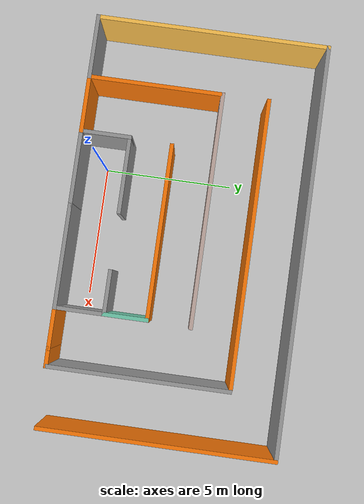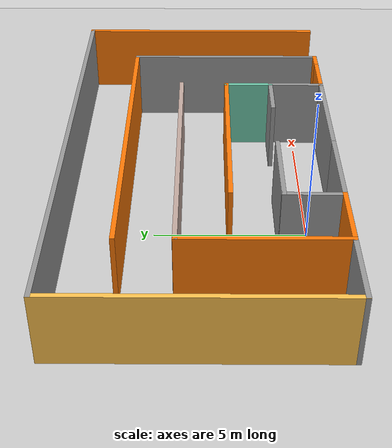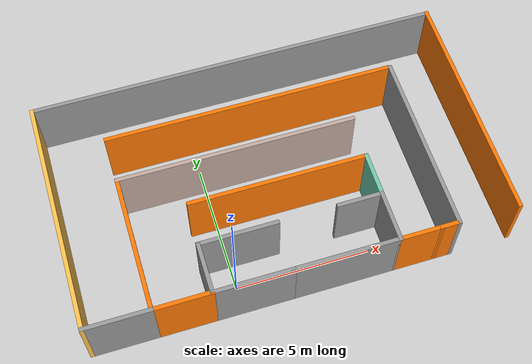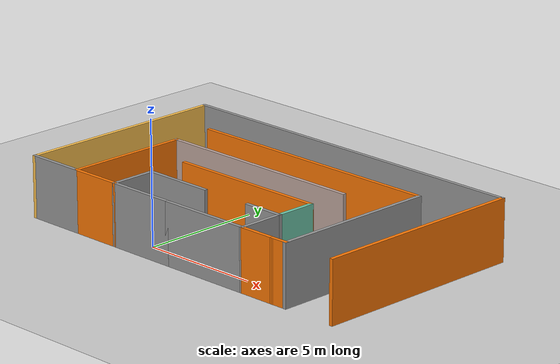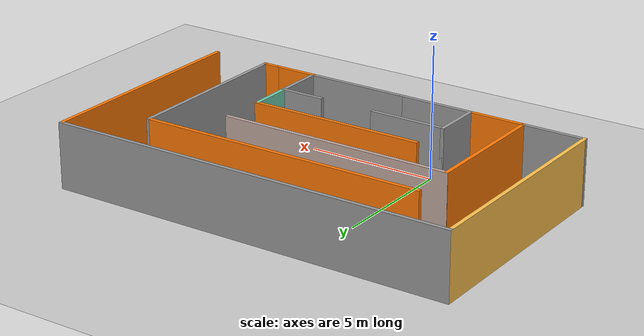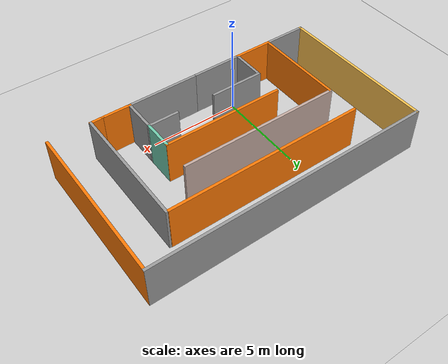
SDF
<sdf version="1.7">
 <world name="default">
  <light name="sun" type="directional">
   <pose>0 0 10 0 -0 0</pose>
   <diffuse>0.8 0.8 0.8 1</diffuse>
   <specular>0.2 0.2 0.2 1</specular>
   <attenuation>
    <range>1000</range>
    <constant>0.9</constant>
    <linear>0.01</linear>
    <quadratic>0.001</quadratic>
   </attenuation>
   <direction>-0.5 0.1 -0.9</direction>
   <spot><inner_angle>0</inner_angle><outer_angle>0</outer_angle><falloff>0</falloff></spot>
  </light>
  <model name="ground_plane">
   <static>1</static>
   <link name="link">
    <collision name="collision">
     <geometry><plane><normal>0 0 1</normal><size>100 100</size></plane></geometry>
     <surface>
      <contact><collide_bitmask>65535</collide_bitmask></contact>
      <friction><ode><mu>100</mu><mu2>50</mu2></ode></friction>
     </surface>
    </collision>
    <visual name="visual">
     <cast_shadows>0</cast_shadows>
     <geometry><plane><normal>0 0 1</normal><size>100 100</size></plane></geometry>
     <material>
      <script><uri>file://media/materials/scripts/gazebo.material</uri><name>Gazebo/Grey</name></script>
     </material>
    </visual>
   </link>
  </model>
  <gravity>0 0 -9.8</gravity>
  <magnetic_field>6e-06 2.3e-05 -4.2e-05</magnetic_field>
  <atmosphere type="adiabatic"/>
  <physics type="ode">
   <max_step_size>0.001</max_step_size>
   <real_time_factor>1</real_time_factor>
   <real_time_update_rate>1000</real_time_update_rate>
  </physics>
  <scene><ambient>0.4 0.4 0.4 1</ambient><background>0.7 0.7 0.7 1</background><shadows>1</shadows></scene>
  <spherical_coordinates>
   <surface_model>EARTH_WGS84</surface_model>
   <latitude_deg>0</latitude_deg>
   <longitude_deg>0</longitude_deg>
   <elevation>0</elevation>
   <heading_deg>0</heading_deg>
  </spherical_coordinates>
  <model name="practice2">
   <pose>2.33255 3.51119 0 0 -0 0</pose>
   <link name="Wall_0">
    <collision name="Wall_0_Collision">
     <geometry><box><size>3 0.15 2.5</size></box></geometry>
     <pose>0 0 1.25 0 -0 0</pose>
    </collision>
    <visual name="Wall_0_Visual">
     <pose>0 0 1.25 0 -0 0</pose>
     <geometry><box><size>3 0.15 2.5</size></box></geometry>
     <material>
      <script><uri>file://media/materials/scripts/gazebo.material</uri><name>Gazebo/Grey</name></script>
      <ambient>1 1 1 1</ambient>
     </material>
     <meta><layer>0</layer></meta>
    </visual>
    <pose>-1.925 -4.42385 0 0 -0 3.14159</pose>
   </link>
   <link name="Wall_1">
    <collision name="Wall_1_Collision">
     <geometry><box><size>2 0.15 2.5</size></box></geometry>
     <pose>0 0 1.25 0 -0 0</pose>
    </collision>
    <visual name="Wall_1_Visual">
     <pose>0 0 1.25 0 -0 0</pose>
     <geometry><box><size>2 0.15 2.5</size></box></geometry>
     <material>
      <script><uri>file://media/materials/scripts/gazebo.material</uri><name>Gazebo/Grey</name></script>
      <ambient>1 1 1 1</ambient>
     </material>
     <meta><layer>0</layer></meta>
    </visual>
    <pose>-3.35 -3.49885 0 0 -0 1.5708</pose>
   </link>
   <link name="Wall_13">
    <collision name="Wall_13_Collision">
     <geometry><box><size>1.6724 0.15 2.5</size></box></geometry>
     <pose>0 0 1.25 0 -0 0</pose>
    </collision>
    <visual name="Wall_13_Visual">
     <pose>0 0 1.25 0 -0 0</pose>
     <geometry><box><size>1.6724 0.15 2.5</size></box></geometry>
     <material>
      <script><uri>file://media/materials/scripts/gazebo.material</uri><name>Gazebo/Grey</name></script>
      <ambient>0.996078 0.47451 0.0196078 1</ambient>
     </material>
     <meta><layer>0</layer></meta>
    </visual>
    <pose>4.11117 -4.42469 0 0 -0 3.14049</pose>
   </link>
   <link name="Wall_15">
    <collision name="Wall_15_Collision">
     <geometry><box><size>2.25 0.15 2.5</size></box></geometry>
     <pose>0 0 1.25 0 -0 0</pose>
    </collision>
    <visual name="Wall_15_Visual">
     <pose>0 0 1.25 0 -0 0</pose>
     <geometry><box><size>2.25 0.15 2.5</size></box></geometry>
     <material>
      <script><uri>file://media/materials/scripts/gazebo.material</uri><name>Gazebo/Grey</name></script>
      <ambient>0.996078 0.47451 0.0196078 1</ambient>
     </material>
     <meta><layer>0</layer></meta>
    </visual>
    <pose>-4.4 -4.42385 0 0 -0 3.14159</pose>
   </link>
   <link name="Wall_16">
    <collision name="Wall_16_Collision">
     <geometry><box><size>5.25 0.15 2.5</size></box></geometry>
     <pose>0 0 1.25 0 -0 0</pose>
    </collision>
    <visual name="Wall_16_Visual">
     <pose>0 0 1.25 0 -0 0</pose>
     <geometry><box><size>5.25 0.15 2.5</size></box></geometry>
     <material>
      <script><uri>file://media/materials/scripts/gazebo.material</uri><name>Gazebo/Grey</name></script>
      <ambient>0.996078 0.47451 0.0196078 1</ambient>
     </material>
     <meta><layer>0</layer></meta>
    </visual>
    <pose>-5.45 -1.87385 0 0 -0 1.5708</pose>
   </link>
   <link name="Wall_18">
    <collision name="Wall_18_Collision">
     <geometry><box><size>9 0.15 2.5</size></box></geometry>
     <pose>0 0 1.25 0 -0 0</pose>
    </collision>
    <visual name="Wall_18_Visual">
     <pose>0 0 1.25 0 -0 0</pose>
     <geometry><box><size>9 0.15 2.5</size></box></geometry>
     <material>
      <script><uri>file://media/materials/scripts/gazebo.material</uri><name>Gazebo/Grey</name></script>
      <ambient>0.760784 0.662745 0.627451 1</ambient>
     </material>
     <meta><layer>0</layer></meta>
    </visual>
    <pose>-1.0219 0.681898 0 0 -0 0</pose>
   </link>
   <link name="Wall_2">
    <collision name="Wall_2_Collision">
     <geometry><box><size>3 0.15 2.5</size></box></geometry>
     <pose>0 0 1.25 0 -0 0</pose>
    </collision>
    <visual name="Wall_2_Visual">
     <pose>0 0 1.25 0 -0 0</pose>
     <geometry><box><size>3 0.15 2.5</size></box></geometry>
     <material>
      <script><uri>file://media/materials/scripts/gazebo.material</uri><name>Gazebo/Grey</name></script>
      <ambient>1 1 1 1</ambient>
     </material>
     <meta><layer>0</layer></meta>
    </visual>
    <pose>-1.925 -2.57385 0 0 -0 0</pose>
   </link>
   <link name="Wall_20">
    <collision name="Wall_20_Collision">
     <geometry><box><size>0.798383 0.15 2.5</size></box></geometry>
     <pose>0 0 1.25 0 -0 0</pose>
    </collision>
    <visual name="Wall_20_Visual">
     <pose>0 0 1.25 0 -0 0</pose>
     <geometry><box><size>0.798383 0.15 2.5</size></box></geometry>
     <material>
      <script><uri>file://media/materials/scripts/gazebo.material</uri><name>Gazebo/Grey</name></script>
      <ambient>0.996078 0.47451 0.0196078 1</ambient>
     </material>
     <meta><layer>0</layer></meta>
    </visual>
    <pose>5.19653 -4.42283 0 0 -0 0.00832</pose>
   </link>
   <link name="Wall_21">
    <collision name="Wall_21_Collision">
     <geometry><box><size>7 0.15 2.5</size></box></geometry>
     <pose>0 0 1.25 0 -0 0</pose>
    </collision>
    <visual name="Wall_21_Visual">
     <pose>0 0 1.25 0 -0 0</pose>
     <geometry><box><size>7 0.15 2.5</size></box></geometry>
     <material>
      <script><uri>file://media/materials/scripts/gazebo.material</uri><name>Gazebo/Grey</name></script>
      <ambient>1 1 1 1</ambient>
     </material>
     <meta><layer>0</layer></meta>
    </visual>
    <pose>5.5256 -1.00002 0 0 -0 1.5708</pose>
   </link>
   <link name="Wall_25">
    <collision name="Wall_25_Collision">
     <geometry><box><size>2.5 0.15 2.5</size></box></geometry>
     <pose>0 0 1.25 0 -0 0</pose>
    </collision>
    <visual name="Wall_25_Visual">
     <pose>0 0 1.25 0 -0 0</pose>
     <geometry><box><size>2.5 0.15 2.5</size></box></geometry>
     <material>
      <script><uri>file://media/materials/scripts/gazebo.material</uri><name>Gazebo/Grey</name></script>
      <ambient>1 1 1 1</ambient>
     </material>
     <meta><layer>0</layer></meta>
    </visual>
    <pose>-6.625 -4.42385 0 0 -0 3.14159</pose>
   </link>
   <link name="Wall_26">
    <collision name="Wall_26_Collision">
     <geometry><box><size>9 0.15 2.5</size></box></geometry>
     <pose>0 0 1.25 0 -0 0</pose>
    </collision>
    <visual name="Wall_26_Visual">
     <pose>0 0 1.25 0 -0 0</pose>
     <geometry><box><size>9 0.15 2.5</size></box></geometry>
     <material>
      <script><uri>file://media/materials/scripts/gazebo.material</uri><name>Gazebo/Grey</name></script>
      <ambient>1 0.764706 0.305882 1</ambient>
     </material>
     <meta><layer>0</layer></meta>
    </visual>
    <pose>-7.8 0.001148 0 0 -0 1.5708</pose>
   </link>
   <link name="Wall_33">
    <collision name="Wall_33_Collision">
     <geometry><box><size>1.75 0.15 2.5</size></box></geometry>
     <pose>0 0 1.25 0 -0 0</pose>
    </collision>
    <visual name="Wall_33_Visual">
     <pose>0 0 1.25 0 -0 0</pose>
     <geometry><box><size>1.75 0.15 2.5</size></box></geometry>
     <material>
      <script><uri>file://media/materials/scripts/gazebo.material</uri><name>Gazebo/Grey</name></script>
      <ambient>0.435294 0.796078 0.67451 1</ambient>
     </material>
     <meta><layer>0</layer></meta>
    </visual>
    <pose>3.35 -1.77385 0 0 -0 -1.5708</pose>
   </link>
   <link name="Wall_39">
    <collision name="Wall_39_Collision">
     <geometry><box><size>11 0.15 2.5</size></box></geometry>
     <pose>0 0 1.25 0 -0 0</pose>
    </collision>
    <visual name="Wall_39_Visual">
     <pose>0 0 1.25 0 -0 0</pose>
     <geometry><box><size>11 0.15 2.5</size></box></geometry>
     <material>
      <script><uri>file://media/materials/scripts/gazebo.material</uri><name>Gazebo/Grey</name></script>
      <ambient>0.996078 0.47451 0.0196078 1</ambient>
     </material>
     <meta><layer>0</layer></meta>
    </visual>
    <pose>-0.022361 2.44538 0 0 -0 3.14159</pose>
   </link>
   <link name="Wall_42">
    <collision name="Wall_42_Collision">
     <geometry><box><size>15.75 0.15 2.5</size></box></geometry>
     <pose>0 0 1.25 0 -0 0</pose>
    </collision>
    <visual name="Wall_42_Visual">
     <pose>0 0 1.25 0 -0 0</pose>
     <geometry><box><size>15.75 0.15 2.5</size></box></geometry>
     <material>
      <script><uri>file://media/materials/scripts/gazebo.material</uri><name>Gazebo/Grey</name></script>
      <ambient>1 1 1 1</ambient>
     </material>
     <meta><layer>0</layer></meta>
    </visual>
    <pose>0 4.42615 0 0 -0 0</pose>
   </link>
   <link name="Wall_43">
    <collision name="Wall_43_Collision">
     <geometry><box><size>9 0.15 2.5</size></box></geometry>
     <pose>0 0 1.25 0 -0 0</pose>
    </collision>
    <visual name="Wall_43_Visual">
     <pose>0 0 1.25 0 -0 0</pose>
     <geometry><box><size>9 0.15 2.5</size></box></geometry>
     <material>
      <script><uri>file://media/materials/scripts/gazebo.material</uri><name>Gazebo/Grey</name></script>
      <ambient>0.996078 0.47451 0.0196078 1</ambient>
     </material>
     <meta><layer>0</layer></meta>
    </visual>
    <pose>7.8 0.001148 0 0 -0 -1.5708</pose>
   </link>
   <link name="Wall_5">
    <collision name="Wall_5_Collision">
     <geometry><box><size>4 0.15 2.5</size></box></geometry>
     <pose>0 0 1.25 0 -0 0</pose>
    </collision>
    <visual name="Wall_5_Visual">
     <pose>0 0 1.25 0 -0 0</pose>
     <geometry><box><size>4 0.15 2.5</size></box></geometry>
     <material>
      <script><uri>file://media/materials/scripts/gazebo.material</uri><name>Gazebo/Grey</name></script>
      <ambient>1 1 1 1</ambient>
     </material>
     <meta><layer>0</layer></meta>
    </visual>
    <pose>1.425 -4.42385 0 0 -0 0</pose>
   </link>
   <link name="Wall_6">
    <collision name="Wall_6_Collision">
     <geometry><box><size>2 0.15 2.5</size></box></geometry>
     <pose>0 0 1.25 0 -0 0</pose>
    </collision>
    <visual name="Wall_6_Visual">
     <pose>0 0 1.25 0 -0 0</pose>
     <geometry><box><size>2 0.15 2.5</size></box></geometry>
     <material>
      <script><uri>file://media/materials/scripts/gazebo.material</uri><name>Gazebo/Grey</name></script>
      <ambient>1 1 1 1</ambient>
     </material>
     <meta><layer>0</layer></meta>
    </visual>
    <pose>3.35 -3.49885 0 0 -0 1.5708</pose>
   </link>
   <link name="Wall_7">
    <collision name="Wall_7_Collision">
     <geometry><box><size>1.75 0.15 2.5</size></box></geometry>
     <pose>0 0 1.25 0 -0 0</pose>
    </collision>
    <visual name="Wall_7_Visual">
     <pose>0 0 1.25 0 -0 0</pose>
     <geometry><box><size>1.75 0.15 2.5</size></box></geometry>
     <material>
      <script><uri>file://media/materials/scripts/gazebo.material</uri><name>Gazebo/Grey</name></script>
      <ambient>1 1 1 1</ambient>
     </material>
     <meta><layer>0</layer></meta>
    </visual>
    <pose>2.55 -2.57385 0 0 -0 3.14159</pose>
   </link>
   <link name="Wall_9">
    <collision name="Wall_9_Collision">
     <geometry><box><size>6.75 0.15 2.5</size></box></geometry>
     <pose>0 0 1.25 0 -0 0</pose>
    </collision>
    <visual name="Wall_9_Visual">
     <pose>0 0 1.25 0 -0 0</pose>
     <geometry><box><size>6.75 0.15 2.5</size></box></geometry>
     <material>
      <script><uri>file://media/materials/scripts/gazebo.material</uri><name>Gazebo/Grey</name></script>
      <ambient>0.996078 0.47451 0.0196078 1</ambient>
     </material>
     <meta><layer>0</layer></meta>
    </visual>
    <pose>0.04887 -0.961174 0 0 -0 3.14159</pose>
   </link>
   <static>1</static>
  </model>
 </world>
</sdf>
